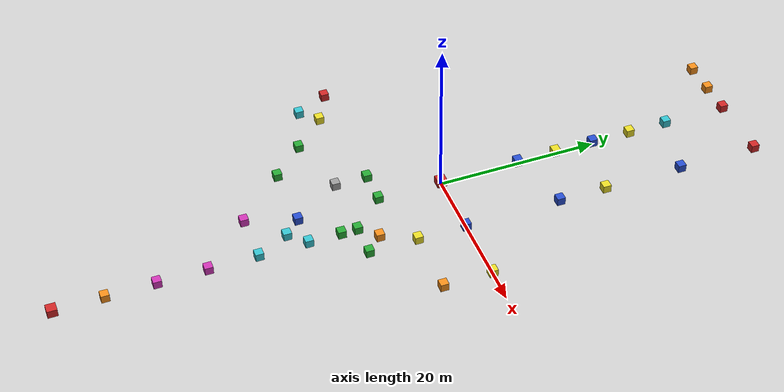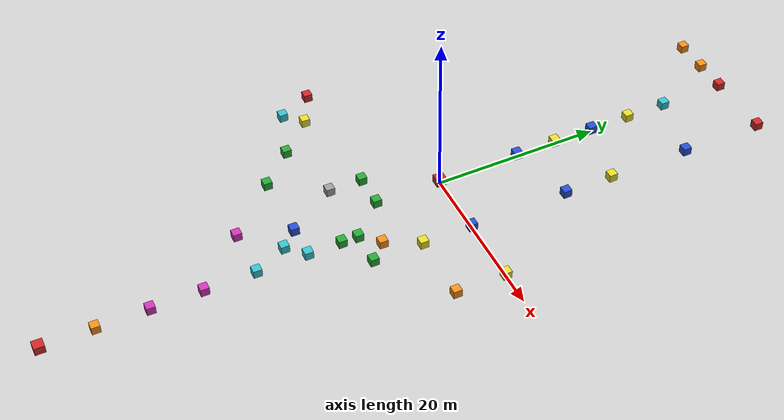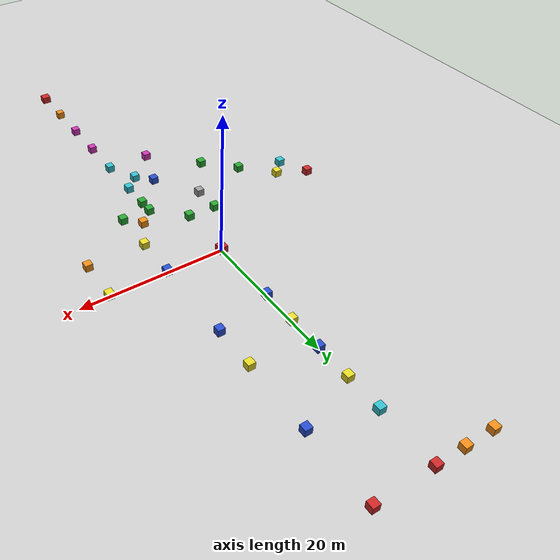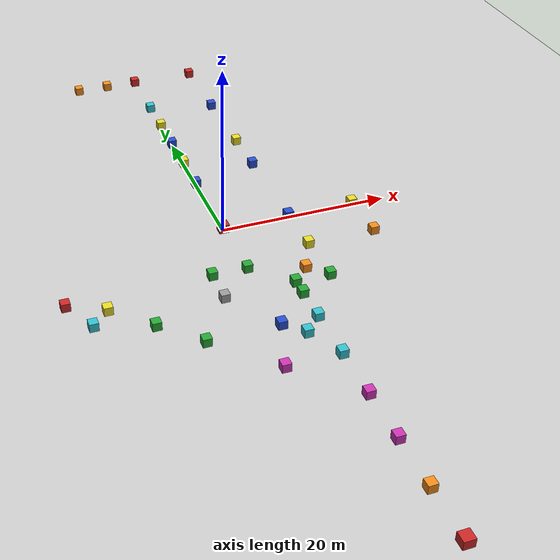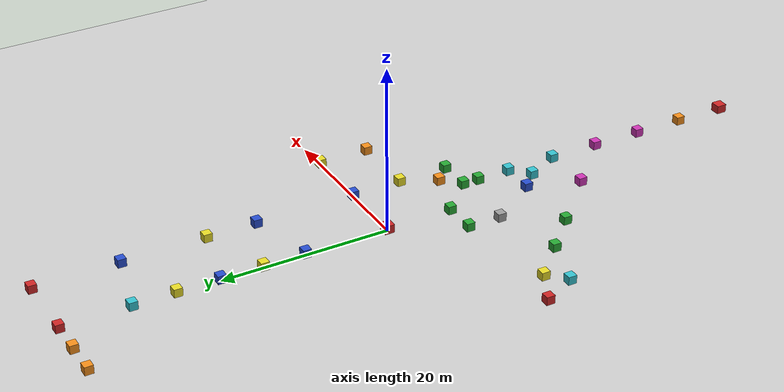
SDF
<?xml version="1.0" ?>
<sdf version="1.4">
  <world name="traveling_ethiopia_world">

    <!-- Global light -->
    <include>
      <uri>model://sun</uri>
    </include>

    <!-- Ground plane -->
    <model name="ground_plane">
      <static>true</static>
      <link name="link">
        <collision name="collision">
          <geometry>
            <plane>
              <normal>0 0 1</normal>
              <size>120 120</size>
            </plane>
          </geometry>
          <surface>
            <friction>
              <ode>
                <mu>0.8</mu>
                <mu2>0.8</mu2>
              </ode>
            </friction>
          </surface>
        </collision>
        <visual name="visual">
          <geometry>
            <plane>
              <normal>0 0 1</normal>
              <size>120 120</size>
            </plane>
          </geometry>
          <material>
            <script>
              <uri>file://media/materials/scripts/gazebo.material</uri>
              <name>Gazebo/Grey</name>
            </script>
          </material>
        </visual>
      </link>
    </model>

    <!-- Figure 5: All states in Cartesian coordinates (x, y, z)     -->
    <!-- Coordinate system: Addis Ababa at origin, meters             -->

    <!-- Addis Ababa (origin) -->
    <model name="addis_ababa">
      <pose>0 0 0.5 0 0 0</pose>
      <static>true</static>
      <link name="link">
        <visual name="visual">
          <geometry><box><size>1.2 1.2 1</size></box></geometry>
          <material>
            <script><uri>file://media/materials/scripts/gazebo.material</uri><name>Gazebo/Red</name></script>
          </material>
        </visual>
      </link>
    </model>

    <!-- Debre Birhan -->
    <model name="debre_birhan">
      <pose>0 10 0.5 0 0 0</pose>
      <static>true</static>
      <link name="link">
        <visual name="visual">
          <geometry><box><size>1 1 1</size></box></geometry>
          <material>
            <script><uri>file://media/materials/scripts/gazebo.material</uri><name>Gazebo/Blue</name></script>
          </material>
        </visual>
      </link>
    </model>

    <!-- Ambo -->
    <model name="ambo">
      <pose>8 0 0.5 0 0 0</pose>
      <static>true</static>
      <link name="link">
        <visual name="visual">
          <geometry><box><size>1 1 1</size></box></geometry>
          <material>
            <script><uri>file://media/materials/scripts/gazebo.material</uri><name>Gazebo/Blue</name></script>
          </material>
        </visual>
      </link>
    </model>

    <!-- Adama -->
    <model name="adama">
      <pose>0 -8 0.5 0 0 0</pose>
      <static>true</static>
      <link name="link">
        <visual name="visual">
          <geometry><box><size>1 1 1</size></box></geometry>
          <material>
            <script><uri>file://media/materials/scripts/gazebo.material</uri><name>Gazebo/Green</name></script>
          </material>
        </visual>
      </link>
    </model>

    <!-- Nekemte -->
    <model name="nekemte">
      <pose>16 0 0.5 0 0 0</pose>
      <static>true</static>
      <link name="link">
        <visual name="visual">
          <geometry><box><size>1 1 1</size></box></geometry>
          <material>
            <script><uri>file://media/materials/scripts/gazebo.material</uri><name>Gazebo/Yellow</name></script>
          </material>
        </visual>
      </link>
    </model>

    <!-- Wolkite -->
    <model name="wolkite">
      <pose>8 -6 0.5 0 0 0</pose>
      <static>true</static>
      <link name="link">
        <visual name="visual">
          <geometry><box><size>1 1 1</size></box></geometry>
          <material>
            <script><uri>file://media/materials/scripts/gazebo.material</uri><name>Gazebo/Yellow</name></script>
          </material>
        </visual>
      </link>
    </model>

    <!-- Jimma -->
    <model name="jimma">
      <pose>16 -6 0.5 0 0 0</pose>
      <static>true</static>
      <link name="link">
        <visual name="visual">
          <geometry><box><size>1 1 1</size></box></geometry>
          <material>
            <script><uri>file://media/materials/scripts/gazebo.material</uri><name>Gazebo/Orange</name></script>
          </material>
        </visual>
      </link>
    </model>

    <!-- Butajira -->
    <model name="butajira">
      <pose>8 -12 0.5 0 0 0</pose>
      <static>true</static>
      <link name="link">
        <visual name="visual">
          <geometry><box><size>1 1 1</size></box></geometry>
          <material>
            <script><uri>file://media/materials/scripts/gazebo.material</uri><name>Gazebo/Green</name></script>
          </material>
        </visual>
      </link>
    </model>

    <!-- Batu -->
    <model name="batu">
      <pose>4 -12 0.5 0 0 0</pose>
      <static>true</static>
      <link name="link">
        <visual name="visual">
          <geometry><box><size>1 1 1</size></box></geometry>
          <material>
            <script><uri>file://media/materials/scripts/gazebo.material</uri><name>Gazebo/Green</name></script>
          </material>
        </visual>
      </link>
    </model>

    <!-- Shashemene -->
    <model name="shashemene">
      <pose>4 -18 0.5 0 0 0</pose>
      <static>true</static>
      <link name="link">
        <visual name="visual">
          <geometry><box><size>1 1 1</size></box></geometry>
          <material>
            <script><uri>file://media/materials/scripts/gazebo.material</uri><name>Gazebo/Cyan</name></script>
          </material>
        </visual>
      </link>
    </model>

    <!-- Hawassa -->
    <model name="hawassa">
      <pose>4 -24 0.5 0 0 0</pose>
      <static>true</static>
      <link name="link">
        <visual name="visual">
          <geometry><box><size>1 1 1</size></box></geometry>
          <material>
            <script><uri>file://media/materials/scripts/gazebo.material</uri><name>Gazebo/Cyan</name></script>
          </material>
        </visual>
      </link>
    </model>

    <!-- Dilla -->
    <model name="dilla">
      <pose>4 -30 0.5 0 0 0</pose>
      <static>true</static>
      <link name="link">
        <visual name="visual">
          <geometry><box><size>1 1 1</size></box></geometry>
          <material>
            <script><uri>file://media/materials/scripts/gazebo.material</uri><name>Gazebo/Magenta</name></script>
          </material>
        </visual>
      </link>
    </model>

    <!-- Bule Hora -->
    <model name="bule_hora">
      <pose>4 -36 0.5 0 0 0</pose>
      <static>true</static>
      <link name="link">
        <visual name="visual">
          <geometry><box><size>1 1 1</size></box></geometry>
          <material>
            <script><uri>file://media/materials/scripts/gazebo.material</uri><name>Gazebo/Magenta</name></script>
          </material>
        </visual>
      </link>
    </model>

    <!-- Yabello -->
    <model name="yabello">
      <pose>4 -42 0.5 0 0 0</pose>
      <static>true</static>
      <link name="link">
        <visual name="visual">
          <geometry><box><size>1 1 1</size></box></geometry>
          <material>
            <script><uri>file://media/materials/scripts/gazebo.material</uri><name>Gazebo/Orange</name></script>
          </material>
        </visual>
      </link>
    </model>

    <!-- Moyale -->
    <model name="moyale">
      <pose>4 -48 0.5 0 0 0</pose>
      <static>true</static>
      <link name="link">
        <visual name="visual">
          <geometry><box><size>1.2 1.2 1</size></box></geometry>
          <material>
            <script><uri>file://media/materials/scripts/gazebo.material</uri><name>Gazebo/Red</name></script>
          </material>
        </visual>
      </link>
    </model>

    <!-- Assella -->
    <model name="assella">
      <pose>-4 -8 0.5 0 0 0</pose>
      <static>true</static>
      <link name="link">
        <visual name="visual">
          <geometry><box><size>1 1 1</size></box></geometry>
          <material>
            <script><uri>file://media/materials/scripts/gazebo.material</uri><name>Gazebo/Green</name></script>
          </material>
        </visual>
      </link>
    </model>

    <!-- Dodolla -->
    <model name="dodolla">
      <pose>0 -18 0.5 0 0 0</pose>
      <static>true</static>
      <link name="link">
        <visual name="visual">
          <geometry><box><size>1 1 1</size></box></geometry>
          <material>
            <script><uri>file://media/materials/scripts/gazebo.material</uri><name>Gazebo/Blue</name></script>
          </material>
        </visual>
      </link>
    </model>

    <!-- Woldia -->
    <model name="woldia">
      <pose>0 20 0.5 0 0 0</pose>
      <static>true</static>
      <link name="link">
        <visual name="visual">
          <geometry><box><size>1 1 1</size></box></geometry>
          <material>
            <script><uri>file://media/materials/scripts/gazebo.material</uri><name>Gazebo/Blue</name></script>
          </material>
        </visual>
      </link>
    </model>

    <!-- Debre Sina -->
    <model name="debre_sina">
      <pose>0 15 0.5 0 0 0</pose>
      <static>true</static>
      <link name="link">
        <visual name="visual">
          <geometry><box><size>1 1 1</size></box></geometry>
          <material>
            <script><uri>file://media/materials/scripts/gazebo.material</uri><name>Gazebo/Yellow</name></script>
          </material>
        </visual>
      </link>
    </model>

    <!-- Kemise -->
    <model name="kemise">
      <pose>0 25 0.5 0 0 0</pose>
      <static>true</static>
      <link name="link">
        <visual name="visual">
          <geometry><box><size>1 1 1</size></box></geometry>
          <material>
            <script><uri>file://media/materials/scripts/gazebo.material</uri><name>Gazebo/Yellow</name></script>
          </material>
        </visual>
      </link>
    </model>

    <!-- Dessie -->
    <model name="dessie">
      <pose>0 30 0.5 0 0 0</pose>
      <static>true</static>
      <link name="link">
        <visual name="visual">
          <geometry><box><size>1 1 1</size></box></geometry>
          <material>
            <script><uri>file://media/materials/scripts/gazebo.material</uri><name>Gazebo/Cyan</name></script>
          </material>
        </visual>
      </link>
    </model>

    <!-- Worabe -->
    <model name="worabe">
      <pose>4 -14 0.5 0 0 0</pose>
      <static>true</static>
      <link name="link">
        <visual name="visual">
          <geometry><box><size>1 1 1</size></box></geometry>
          <material>
            <script><uri>file://media/materials/scripts/gazebo.material</uri><name>Gazebo/Green</name></script>
          </material>
        </visual>
      </link>
    </model>

    <!-- Hossana -->
    <model name="hossana">
      <pose>6 -10 0.5 0 0 0</pose>
      <static>true</static>
      <link name="link">
        <visual name="visual">
          <geometry><box><size>1 1 1</size></box></geometry>
          <material>
            <script><uri>file://media/materials/scripts/gazebo.material</uri><name>Gazebo/Orange</name></script>
          </material>
        </visual>
      </link>
    </model>

    <!-- Wolaita Sodo -->
    <model name="wolaita_sodo">
      <pose>2 -20 0.5 0 0 0</pose>
      <static>true</static>
      <link name="link">
        <visual name="visual">
          <geometry><box><size>1 1 1</size></box></geometry>
          <material>
            <script><uri>file://media/materials/scripts/gazebo.material</uri><name>Gazebo/Cyan</name></script>
          </material>
        </visual>
      </link>
    </model>

    <!-- Matahara -->
    <model name="matahara">
      <pose>-4 -12 0.5 0 0 0</pose>
      <static>true</static>
      <link name="link">
        <visual name="visual">
          <geometry><box><size>1 1 1</size></box></geometry>
          <material>
            <script><uri>file://media/materials/scripts/gazebo.material</uri><name>Gazebo/Grey</name></script>
          </material>
        </visual>
      </link>
    </model>

    <!-- Debre Markos -->
    <model name="debre_markos">
      <pose>8 12 0.5 0 0 0</pose>
      <static>true</static>
      <link name="link">
        <visual name="visual">
          <geometry><box><size>1 1 1</size></box></geometry>
          <material>
            <script><uri>file://media/materials/scripts/gazebo.material</uri><name>Gazebo/Blue</name></script>
          </material>
        </visual>
      </link>
    </model>

    <!-- Finote Selam -->
    <model name="finote_selam">
      <pose>8 18 0.5 0 0 0</pose>
      <static>true</static>
      <link name="link">
        <visual name="visual">
          <geometry><box><size>1 1 1</size></box></geometry>
          <material>
            <script><uri>file://media/materials/scripts/gazebo.material</uri><name>Gazebo/Yellow</name></script>
          </material>
        </visual>
      </link>
    </model>

    <!-- Bahir Dar -->
    <model name="bahir_dar">
      <pose>8 28 0.5 0 0 0</pose>
      <static>true</static>
      <link name="link">
        <visual name="visual">
          <geometry><box><size>1 1 1</size></box></geometry>
          <material>
            <script><uri>file://media/materials/scripts/gazebo.material</uri><name>Gazebo/Blue</name></script>
          </material>
        </visual>
      </link>
    </model>

    <!-- Gondar -->
    <model name="gondar">
      <pose>8 38 0.5 0 0 0</pose>
      <static>true</static>
      <link name="link">
        <visual name="visual">
          <geometry><box><size>1 1 1</size></box></geometry>
          <material>
            <script><uri>file://media/materials/scripts/gazebo.material</uri><name>Gazebo/Red</name></script>
          </material>
        </visual>
      </link>
    </model>

    <!-- Lalibela -->
    <model name="lalibela">
      <pose>0 38 0.5 0 0 0</pose>
      <static>true</static>
      <link name="link">
        <visual name="visual">
          <geometry><box><size>1 1 1</size></box></geometry>
          <material>
            <script><uri>file://media/materials/scripts/gazebo.material</uri><name>Gazebo/Red</name></script>
          </material>
        </visual>
      </link>
    </model>

    <!-- Sekota -->
    <model name="sekota">
      <pose>-4 38 0.5 0 0 0</pose>
      <static>true</static>
      <link name="link">
        <visual name="visual">
          <geometry><box><size>1 1 1</size></box></geometry>
          <material>
            <script><uri>file://media/materials/scripts/gazebo.material</uri><name>Gazebo/Orange</name></script>
          </material>
        </visual>
      </link>
    </model>

    <!-- Mekelle -->
    <model name="mekelle">
      <pose>-8 38 0.5 0 0 0</pose>
      <static>true</static>
      <link name="link">
        <visual name="visual">
          <geometry><box><size>1 1 1</size></box></geometry>
          <material>
            <script><uri>file://media/materials/scripts/gazebo.material</uri><name>Gazebo/Orange</name></script>
          </material>
        </visual>
      </link>
    </model>

    <!-- Arba Minch -->
    <model name="arba_minch">
      <pose>-2 -24 0.5 0 0 0</pose>
      <static>true</static>
      <link name="link">
        <visual name="visual">
          <geometry><box><size>1 1 1</size></box></geometry>
          <material>
            <script><uri>file://media/materials/scripts/gazebo.material</uri><name>Gazebo/Magenta</name></script>
          </material>
        </visual>
      </link>
    </model>

    <!-- Bale -->
    <model name="bale">
      <pose>-8 -18 0.5 0 0 0</pose>
      <static>true</static>
      <link name="link">
        <visual name="visual">
          <geometry><box><size>1 1 1</size></box></geometry>
          <material>
            <script><uri>file://media/materials/scripts/gazebo.material</uri><name>Gazebo/Green</name></script>
          </material>
        </visual>
      </link>
    </model>

    <!-- Goba -->
    <model name="goba">
      <pose>-12 -14 0.5 0 0 0</pose>
      <static>true</static>
      <link name="link">
        <visual name="visual">
          <geometry><box><size>1 1 1</size></box></geometry>
          <material>
            <script><uri>file://media/materials/scripts/gazebo.material</uri><name>Gazebo/Green</name></script>
          </material>
        </visual>
      </link>
    </model>

    <!-- Babile -->
    <model name="babile">
      <pose>-16 -10 0.5 0 0 0</pose>
      <static>true</static>
      <link name="link">
        <visual name="visual">
          <geometry><box><size>1 1 1</size></box></geometry>
          <material>
            <script><uri>file://media/materials/scripts/gazebo.material</uri><name>Gazebo/Yellow</name></script>
          </material>
        </visual>
      </link>
    </model>

    <!-- Harar -->
    <model name="harar">
      <pose>-20 -8 0.5 0 0 0</pose>
      <static>true</static>
      <link name="link">
        <visual name="visual">
          <geometry><box><size>1 1 1</size></box></geometry>
          <material>
            <script><uri>file://media/materials/scripts/gazebo.material</uri><name>Gazebo/Red</name></script>
          </material>
        </visual>
      </link>
    </model>

    <!-- Dire Dawa -->
    <model name="dire_dawa">
      <pose>-18 -12 0.5 0 0 0</pose>
      <static>true</static>
      <link name="link">
        <visual name="visual">
          <geometry><box><size>1 1 1</size></box></geometry>
          <material>
            <script><uri>file://media/materials/scripts/gazebo.material</uri><name>Gazebo/Cyan</name></script>
          </material>
        </visual>
      </link>
    </model>

    <!-- Physics (working physics engine) -->
    <physics type="ode">
      <gravity>0 0 -9.8</gravity>
      <ode>
        <solver>
          <type>quick</type>
          <iters>10</iters>
          <sor>1.3</sor>
          <use_dynamic_moi_rescaling>0</use_dynamic_moi_rescaling>
        </solver>
        <constraints>
          <cfm>0.00001</cfm>
          <erp>0.2</erp>
          <contact_max_correcting_vel>100</contact_max_correcting_vel>
          <contact_surface_layer>0.01</contact_surface_layer>
        </constraints>
      </ode>
      <max_step_size>0.004</max_step_size>
      <real_time_factor>1</real_time_factor>
      <real_time_update_rate>250</real_time_update_rate>
    </physics>

    <!-- Scene -->
    <scene>
      <ambient>0.4 0.4 0.4 1</ambient>
      <background>0.7 0.7 0.7 1</background>
      <shadows>true</shadows>
    </scene>

  </world>
</sdf>
